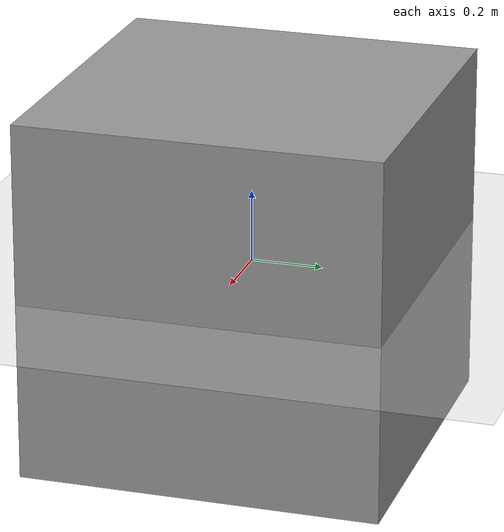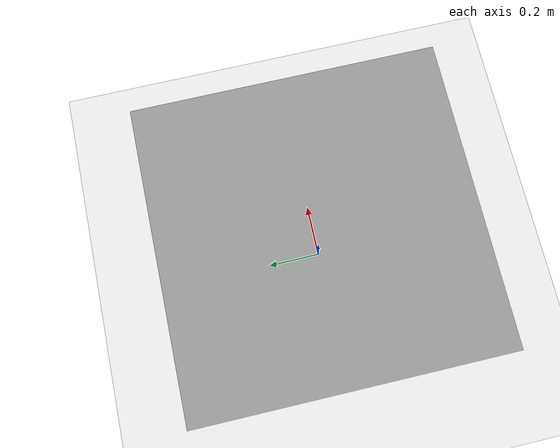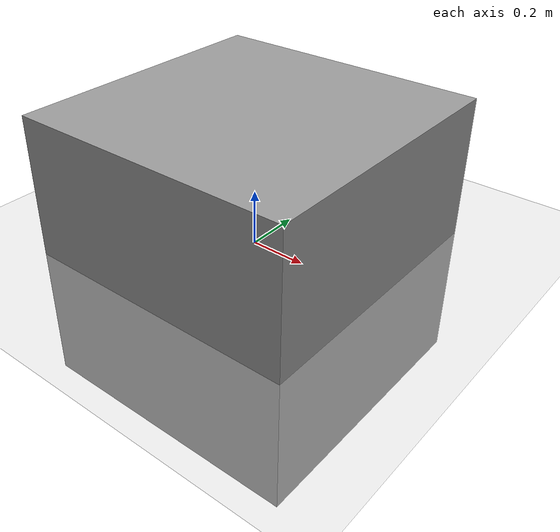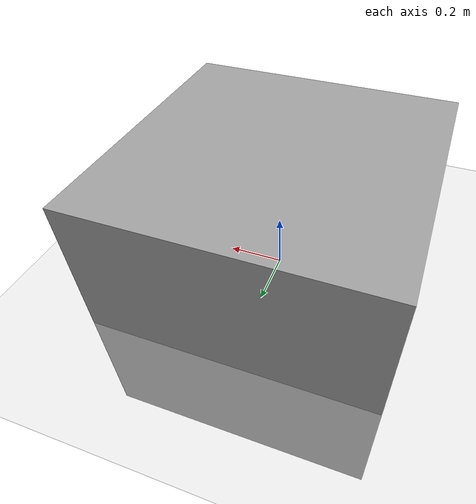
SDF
<sdf version="1.7">
 <world name="default">
  <include><uri>model://ground_plane</uri></include>
  <include><uri>model://sun</uri></include>
  <include><uri>model://cube</uri></include>
  <include><name>keypoints0</name><uri>model://keypoints</uri></include>
  <include><name>keypoints1</name><uri>model://keypoints</uri></include>
  <include><name>keypoints2</name><uri>model://keypoints</uri></include>
  <include><name>keypoints3</name><uri>model://keypoints</uri></include>
  <include><name>keypoints4</name><uri>model://keypoints</uri></include>
  <include><name>keypoints5</name><uri>model://keypoints</uri></include>
  <include><name>keypoints6</name><uri>model://keypoints</uri></include>
  <include><name>keypoints7</name><uri>model://keypoints</uri></include>
  <include><name>keypoints8</name><uri>model://keypoints</uri></include>
  <include><name>keypoints9</name><uri>model://keypoints</uri></include>
  <include><name>keypoints10</name><uri>model://keypoints</uri></include>
  <include><name>keypoints11</name><uri>model://keypoints</uri></include>
  <include><name>keypoints12</name><uri>model://keypoints</uri></include>
  <include><name>keypoints13</name><uri>model://keypoints</uri></include>
  <include><name>keypoints14</name><uri>model://keypoints</uri></include>
  <include><name>keypoints15</name><uri>model://keypoints</uri></include>
  <include><name>keypoints16</name><uri>model://keypoints</uri></include>
  <include><name>keypoints17</name><uri>model://keypoints</uri></include>
  <include><name>keypoints18</name><uri>model://keypoints</uri></include>
  <include><name>keypoints19</name><uri>model://keypoints</uri></include>
  <include><name>keypoints20</name><uri>model://keypoints</uri></include>
  <plugin name="gazebo_set_state" filename="libgazebo_ros_state_mode.so "/>
 </world>
</sdf>

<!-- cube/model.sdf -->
<sdf version='1.7'>
  <model name='cube'>

    <link name='link_0'>
      <inertial>
        <mass>1</mass>
        <inertia>
          <ixx>0.166667</ixx>
          <ixy>0</ixy>
          <ixz>0</ixz>
          <iyy>0.166667</iyy>
          <iyz>0</iyz>
          <izz>0.166667</izz>
        </inertia>
      </inertial>
      <pose>0 0 0 0 -0 0</pose>
      <visual name='visual'>
        <pose>0 0 0 0 -0 0</pose>
        <geometry>
          <box>
            <size>1 1 1</size>
          </box>
        </geometry>

        <material>
          <lighting>1</lighting>
          <script>
            <uri>file://media/materials/scripts/gazebo.material</uri>
            <name>Gazebo/Grey</name>
          </script>
          <shader type='pixel'/>
        </material>
        <transparency>0</transparency>
        <cast_shadows>1</cast_shadows>
      </visual>
      <collision name="cube">
        <geometry>
          <box>
            <size>1 1 1</size>
          </box>
        </geometry>
      </collision>
      <self_collide>0</self_collide>
      <enable_wind>0</enable_wind>
      <kinematic>0</kinematic>
      <gravity>0</gravity>
    </link>
    <static>0</static>
    <gravity>0</gravity>
    <allow_auto_disable>1</allow_auto_disable>

      <plugin name='planar_move' filename='libgazebo_ros_3d_move_mode.so'>
        <ros>
          <namespace>/cube</namespace>
          <remapping>cmd_vel:=cmd_demo</remapping>
          <remapping>odom:=odom_demo</remapping>
        </ros>

        <update_rate>100</update_rate>
        <publish_rate>10</publish_rate>

        <!-- output -->
        <publish_odom>true</publish_odom>
        <publish_odom_tf>true</publish_odom_tf>

        <odometry_frame>odom_demo</odometry_frame>
        <robot_base_frame>link_0</robot_base_frame>

        <covariance_x>0.0001</covariance_x>
        <covariance_y>0.0001</covariance_y>
        <covariance_yaw>0.01</covariance_yaw>
      </plugin>
  </model>
</sdf>

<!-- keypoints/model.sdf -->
<sdf version="1.6">
  <model name="keypoints">
    <link name="link">
      <inertial>
        <mass>0.01</mass>
        <!-- Mark only - based on cylinder -->
        <inertia>
          <ixx>0.00002166</ixx>
          <ixy>0</ixy>
          <ixz>0</ixz>
          <iyy>00002166</iyy>
          <iyz>0</iyz>
          <izz>00002166</izz>
        </inertia>
      </inertial>
      <collision name="collision">
        <geometry>
          <sphere>
            <radius>0.02</radius>
          </sphere>
        </geometry>
      </collision>
      <visual name="visual">
        <geometry>
	        <sphere>
            <radius>0.02</radius>
          </sphere>
        </geometry>
        <material>
          <script>
            <uri>model://blue_projectile/materials/scripts/blue_projectile.material</uri>
            <name>blue_projectile/Blue</name>
          </script>
        </material>
      </visual>
      <gravity>0</gravity>
    </link>

  </model>
</sdf>
